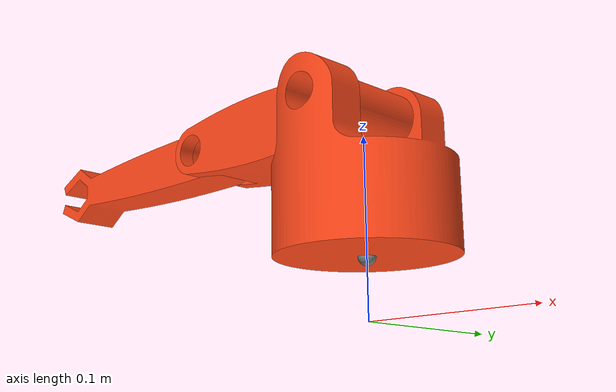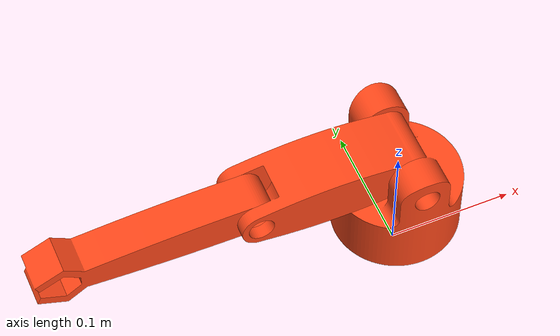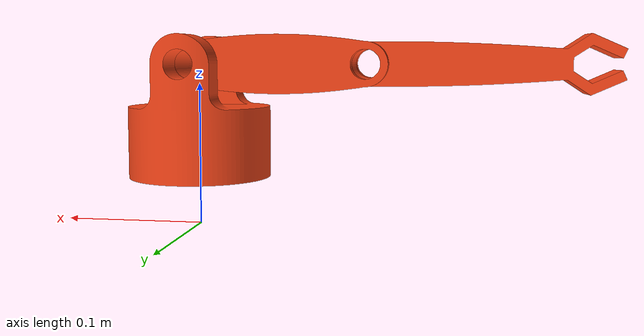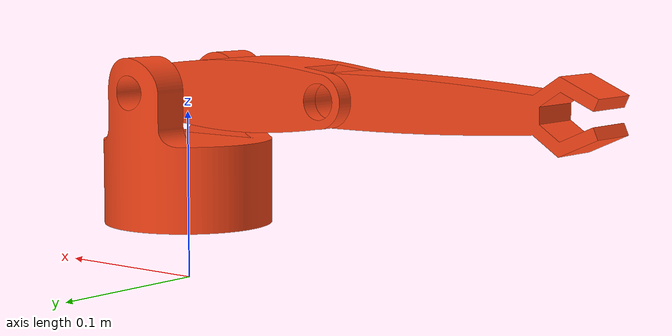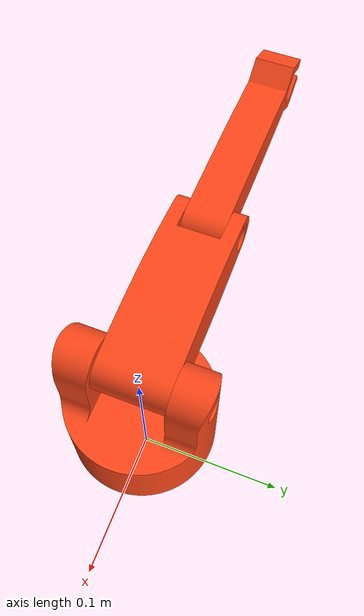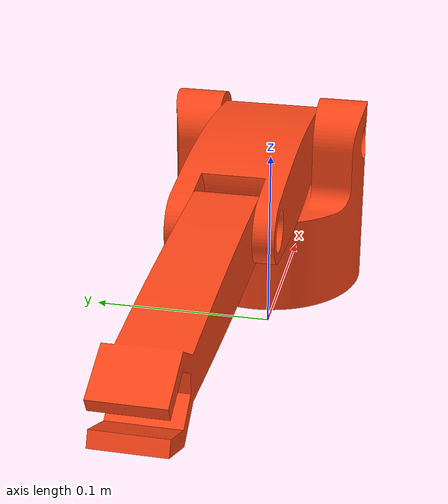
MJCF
<mujoco model="2_DOF_Arm">
  <default>
    <default class="robot">
      <default class="motor">
        <joint damping="0.01" />
        <motor />
      </default>
      <default class="visual">
        <geom material="visualgeom" contype="0" conaffinity="0" group="2" />
      </default>
      <default class="collision">
        <geom material="collision_material" condim="3" contype="0" conaffinity="1" priority="1" group="1" solref="0.005 1" solimp="0.99 0.999 1e-05" friction="1 0.01 0.01" />
      </default>
    </default>
  </default>

  <compiler angle="radian" />

  <asset>
    <material name="default_material" rgba="0.7 0.7 0.7 1" />
    <material name="visualgeom" rgba="0.5 0.6 0.7 1" />
    <material name="collision_material" rgba="1.0 0.28 0.1 0.9" />
    <texture type="skybox" builtin="gradient" rgb1="0.8 0.8 0.8" rgb2="0.2 0.2 0.2" width="512" height="512" />
    <!-- scale=0.001: STL được xuất theo đơn vị mm, cần chuyển về m -->
    <mesh name="base-v1.stl" file="meshes/base-v1.stl" scale="0.001 0.001 0.001" />
    <mesh name="link_1-v1.stl" file="meshes/link_1-v1.stl" scale="0.001 0.001 0.001" />
    <mesh name="link_2-v1.stl" file="meshes/link_2-v1.stl" scale="0.001 0.001 0.001" />
  </asset>

  <worldbody>
    <!-- base-v1 cố định vào thế giới (KHÔNG có freejoint) -->
    <body name="base-v1" pos="0.00000000 0.00000000 0.03405444" quat="1 0 0 0" childclass="robot">
      <geom name="base-v1_collision" pos="0.0 0.0 0.0" quat="1.0 0.0 0.0 0.0" type="mesh" mesh="base-v1.stl" class="collision" />
      <geom name="base-v1_visual" pos="0.0 0.0 0.0" quat="1.0 0.0 0.0 0.0" material="default_material" type="mesh" mesh="base-v1.stl" class="visual" />
      <body name="link_1-v1" pos="0.0 -0.025 0.08" quat="0.7071067811865476 -0.7071067811865476 -0.0 0.0">
        <joint name="base-v1_Revolute-1" type="hinge" ref="0.0" class="motor" range="0.0 3.141593" axis="0.0 0.0 1.0" />
        <inertial pos="-0.05384668015559082 1.1523226817189426e-13 0.025" quat="1.0 0.0 0.0 0.0" mass="1.56676803613673" diaginertia="0.0005390260808662787 0.002019751721611335 0.0018561547247422164" />
        <geom name="link_1-v1_collision" pos="0.0 -0.13667302144222404 2.6645352591003756e-17" quat="0.5000000000000001 0.5000000000000001 -0.5000000000000001 -0.5000000000000001" type="mesh" mesh="link_1-v1.stl" class="collision" />
        <geom name="link_1-v1_visual" pos="0.0 -0.13667302144222404 2.6645352591003756e-17" quat="0.5000000000000001 0.5000000000000001 -0.5000000000000001 -0.5000000000000001" material="default_material" type="mesh" mesh="link_1-v1.stl" class="visual" />
        <body name="link_2-v1" pos="-0.12 0.0 0.01" quat="1.0 0.0 0.0 0.0">
          <joint name="link_1-v1_Revolute-2" type="hinge" ref="0.0" class="motor" range="-1.570796 1.570796" axis="0.0 0.0 1.0" />
          <inertial pos="-0.07182895353767453 7.977618565746525e-14 0.015" quat="1.0 0.0 0.0 0.0" mass="0.9700376189400554" diaginertia="0.00014583185081259303 0.002187198981222771 0.0021875251891943573" />
          <geom name="link_2-v1_collision" pos="5.329070518200751e-17 0.1140544408267181 -2.4424906541753444e-17" quat="0.5000000000000001 0.5000000000000001 -0.5000000000000001 -0.5000000000000001" type="mesh" mesh="link_2-v1.stl" class="collision" />
          <geom name="link_2-v1_visual" pos="5.329070518200751e-17 0.1140544408267181 -2.4424906541753444e-17" quat="0.5000000000000001 0.5000000000000001 -0.5000000000000001 -0.5000000000000001" material="default_material" type="mesh" mesh="link_2-v1.stl" class="visual" />
        </body>
      </body>
      <site name="base-v1_site" pos="0 0 0" quat="1 0 0 0" />
      <camera name="front_camera" mode="track" fovy="90.0" quat="4.329637285359678e-17 4.329637285359677e-17 0.7071067811865475 0.7071067811865476" pos="0.0 2.0 0.5" />
      <camera name="side_camera" mode="track" fovy="90.0" quat="-0.5 -0.4999999999999999 0.5 0.5000000000000001" pos="-2.0 0.0 0.5" />
    </body>
  </worldbody>

  <actuator>
    <motor name="base-v1_Revolute-1_ctrl" joint="base-v1_Revolute-1" class="motor" />
    <motor name="link_1-v1_Revolute-2_ctrl" joint="link_1-v1_Revolute-2" class="motor" />
  </actuator>

  <contact>
    <exclude body1="base-v1" body2="link_1-v1" />
    <exclude body1="link_1-v1" body2="link_2-v1" />
  </contact>

  <sensor>
    <framepos name="base-v1_site_pos" objtype="site" objname="base-v1_site" />
    <framequat name="base-v1_site_quat" objtype="site" objname="base-v1_site" />
    <framelinvel name="base-v1_site_linvel" objtype="site" objname="base-v1_site" />
    <frameangvel name="base-v1_site_angvel" objtype="site" objname="base-v1_site" />
    <velocimeter name="base-v1_site_vel" site="base-v1_site" />
  </sensor>

  <!-- Tư thế ban đầu: joint 1 = 0 rad, joint 2 = 0 rad (đều nằm trong range hợp lệ) -->
  <keyframe>
    <key name="home" qpos="0.0 0.0" />
  </keyframe>

</mujoco>
